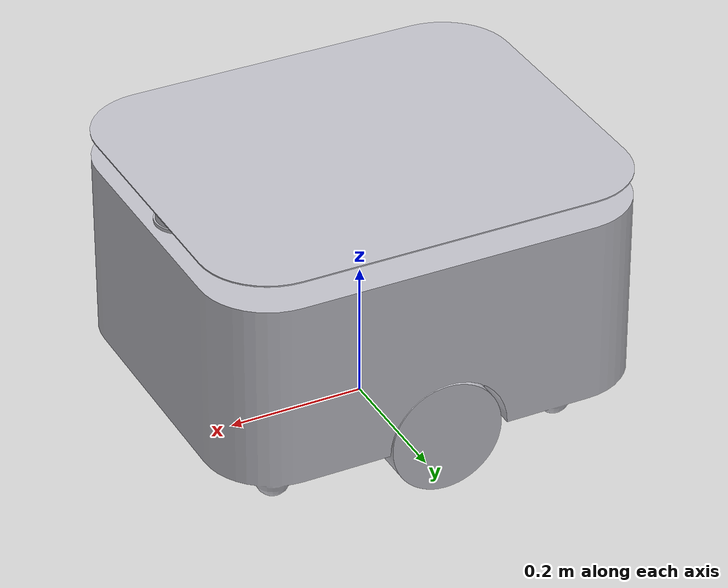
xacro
<?xml version="1.0" ?>
<robot name="mobile_robot" xmlns:xacro="http://www.ros.org/wiki/xacro">

<xacro:include filename="$(find mobile_robot_description)/urdf/materials.xacro" />
<xacro:include filename="$(find mobile_robot_description)/urdf/mobile_robot.trans" />
<xacro:include filename="$(find mobile_robot_description)/urdf/mobile_robot.gazebo" />
<link name="base_link">
  <inertial>
    <origin xyz="2.250094095381786e-14 -5.137201131008644e-17 0.22198447187503909" rpy="0 0 0"/>
    <mass value="96.08363619769145"/>
    <inertia ixx="2.776772" iyy="3.776294" izz="5.284544" ixy="-0.0" iyz="0.0" ixz="0.0"/>
  </inertial>
  <visual>
    <origin xyz="0 0 0" rpy="0 0 0"/>
    <geometry>
      <mesh filename="package://mobile_robot_description/meshes/base_link.stl" scale="0.001 0.001 0.001"/>
    </geometry>
    <material name="silver"/>
  </visual>
  <collision>
    <origin xyz="0 0 0" rpy="0 0 0"/>
    <geometry>
      <mesh filename="package://mobile_robot_description/meshes/base_link.stl" scale="0.001 0.001 0.001"/>
    </geometry>
  </collision>
</link>

<link name="wheel_right_1">
  <inertial>
    <origin xyz="-1.544839807087105e-17 -0.027500000000000052 -1.3877787807814457e-17" rpy="0 0 0"/>
    <mass value="1.095039199234114"/>
    <inertia ixx="0.002142" iyy="0.003731" izz="0.002142" ixy="-0.0" iyz="-0.0" ixz="-0.0"/>
  </inertial>
  <visual>
    <origin xyz="-0.0 0.207 -0.08255" rpy="0 0 0"/>
    <geometry>
      <mesh filename="package://mobile_robot_description/meshes/wheel_right_1.stl" scale="0.001 0.001 0.001"/>
    </geometry>
    <material name="silver"/>
  </visual>
  <collision>
    <origin xyz="-0.0 0.207 -0.08255" rpy="0 0 0"/>
    <geometry>
      <mesh filename="package://mobile_robot_description/meshes/wheel_right_1.stl" scale="0.001 0.001 0.001"/>
    </geometry>
  </collision>
</link>

<link name="wheel_left_1">
  <inertial>
    <origin xyz="-3.79581698951461e-17 0.027500000000000052 -1.3877787807814457e-17" rpy="0 0 0"/>
    <mass value="1.095039199234114"/>
    <inertia ixx="0.002142" iyy="0.003731" izz="0.002142" ixy="0.0" iyz="0.0" ixz="-0.0"/>
  </inertial>
  <visual>
    <origin xyz="-0.0 -0.207 -0.08255" rpy="0 0 0"/>
    <geometry>
      <mesh filename="package://mobile_robot_description/meshes/wheel_left_1.stl" scale="0.001 0.001 0.001"/>
    </geometry>
    <material name="silver"/>
  </visual>
  <collision>
    <origin xyz="-0.0 -0.207 -0.08255" rpy="0 0 0"/>
    <geometry>
      <mesh filename="package://mobile_robot_description/meshes/wheel_left_1.stl" scale="0.001 0.001 0.001"/>
    </geometry>
  </collision>
</link>

<link name="lidar_1">
  <inertial>
    <origin xyz="-0.04999999999999999 4.440892098500626e-18 -0.06560082548511226" rpy="0 0 0"/>
    <mass value="1.0478713442809766"/>
    <inertia ixx="0.000432" iyy="0.000432" izz="0.000642" ixy="0.0" iyz="0.0" ixz="-0.0"/>
  </inertial>
  <visual>
    <origin xyz="-0.317 -0.0 -0.4401" rpy="0 0 0"/>
    <geometry>
      <mesh filename="package://mobile_robot_description/meshes/lidar_1.stl" scale="0.001 0.001 0.001"/>
    </geometry>
    <material name="silver"/>
  </visual>
  <collision>
    <origin xyz="-0.317 -0.0 -0.4401" rpy="0 0 0"/>
    <geometry>
      <mesh filename="package://mobile_robot_description/meshes/lidar_1.stl" scale="0.001 0.001 0.001"/>
    </geometry>
  </collision>
</link>

<joint name="Rev4" type="continuous">
  <origin xyz="0.0 -0.207 0.08255" rpy="0 0 0"/>
  <parent link="base_link"/>
  <child link="wheel_right_1"/>
  <axis xyz="0.0 1.0 0.0"/>
</joint>

<joint name="Rev5" type="continuous">
  <origin xyz="0.0 0.207 0.08255" rpy="0 0 0"/>
  <parent link="base_link"/>
  <child link="wheel_left_1"/>
  <axis xyz="0.0 1.0 0.0"/>
</joint>

<joint name="Rigid6" type="fixed">
  <origin xyz="0.317 0.0 0.4401" rpy="0 0 0"/>
  <parent link="base_link"/>
  <child link="lidar_1"/>
</joint>

</robot>

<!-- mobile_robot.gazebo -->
<robot name="mobile_robot" xmlns:xacro="http://www.ros.org/wiki/xacro" >

<xacro:property name="body_color" value="Gazebo/Silver" />

<gazebo>
  <plugin name="control" filename="libgazebo_ros_control.so"/>
</gazebo>
<gazebo reference="base_link">
  <material>${body_color}</material>
  <mu1>0.1</mu1>
  <mu2>0.1</mu2>
  <selfCollide>true</selfCollide>
  <gravity>true</gravity>
</gazebo>

<gazebo reference="wheel_right_1">
  <material>Gazebo/Black</material>
  <mu1>1500</mu1>
  <mu2>1500</mu2>
  <selfCollide>true</selfCollide>
</gazebo>

<gazebo reference="wheel_left_1">
  <material>Gazebo/Black</material>
  <mu1>1500</mu1>
  <mu2>1500</mu2>
  <selfCollide>true</selfCollide>
</gazebo>

<gazebo reference="lidar_1">
  <material>Gazebo/Blue</material>
  <mu1>0.2</mu1>
  <mu2>0.2</mu2>
  <selfCollide>true</selfCollide>
</gazebo>

 <!-- hokuyo -->
  <gazebo reference="lidar_1">
    <sensor type="gpu_ray" name="head_hokuyo_sensor">
      <pose>0 0 0 0 0 0</pose>
      <visualize>true</visualize>
      <update_rate>40</update_rate>
      <ray>
        <scan>
          <horizontal>
            <samples>720</samples>
            <resolution>1</resolution>
            <min_angle>-1.570796</min_angle>
            <max_angle>1.570796</max_angle>
          </horizontal>
        </scan>
        <range>
          <min>0.10</min>
          <max>30.0</max>
          <resolution>0.01</resolution>
        </range>
        <noise>
          <type>gaussian</type>
          <mean>0.0</mean>
          <stddev>0.01</stddev>
        </noise>
      </ray>
      <plugin name="gazebo_ros_head_hokuyo_controller" filename="libgazebo_ros_gpu_laser.so">
        <topicName>/scan</topicName>
        <frameName>lidar_1</frameName>
      </plugin>
    </sensor>
  </gazebo>

  <gazebo>
  <plugin name="differential_drive_controller" filename="libgazebo_ros_diff_drive.so">

    <!-- Plugin update rate in Hz -->
    <updateRate>100</updateRate>

    <!-- Name of left joint, defaults to `left_joint` -->
    <leftJoint>Rev5</leftJoint>

    <!-- Name of right joint, defaults to `right_joint` -->
    <rightJoint>Rev4</rightJoint>

    <!-- The distance from the center of one wheel to the other, in meters, defaults to 0.34 m -->
    <wheelSeparation>0.479</wheelSeparation>

    <!-- Diameter of the wheels, in meters, defaults to 0.15 m -->
    <wheelDiameter>0.1651</wheelDiameter>

    <!-- Wheel acceleration, in rad/s^2, defaults to 0.0 rad/s^2 -->
    <wheelAcceleration>1.0</wheelAcceleration>

    <!-- Maximum torque which the wheels can produce, in Nm, defaults to 5 Nm -->
    <wheelTorque>50</wheelTorque>

    <!-- Topic to receive geometry_msgs/Twist message commands, defaults to `cmd_vel` -->
    <commandTopic>cmd_vel</commandTopic>

    <!-- Topic to publish nav_msgs/Odometry messages, defaults to `odom` -->
    <odometryTopic>odom</odometryTopic>

    <!-- Odometry frame, defaults to `odom` -->
    <odometryFrame>odom</odometryFrame>

    <!-- Robot frame to calculate odometry from, defaults to `base_footprint` -->
    <robotBaseFrame>base_link</robotBaseFrame>

    <!-- Odometry source, 0 for ENCODER, 1 for WORLD, defaults to WORLD -->
    <odometrySource>1</odometrySource>

    <!-- Set to true to publish transforms for the wheel links, defaults to false -->
    <publishWheelTF>true</publishWheelTF>

    <!-- Set to true to publish transforms for the odometry, defaults to true -->
    <publishOdom>true</publishOdom>

    <!-- Set to true to publish sensor_msgs/JointState on /joint_states for the wheel joints, defaults to false -->
    <publishWheelJointState>false</publishWheelJointState>

    <!-- Set to true to swap right and left wheels, defaults to true -->
    <legacyMode>false</legacyMode>
  </plugin>
</gazebo>

</robot>
